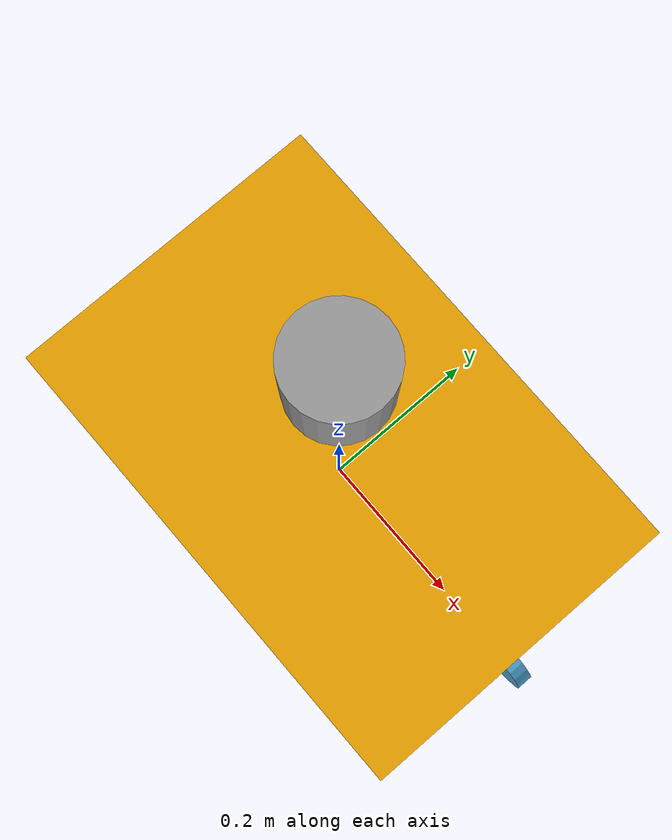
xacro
<?xml version="1.0"?>
<robot name="lidar_tank" xmlns:xacro="http://ros.org/wiki/xacro">

<transmission name="trans_joint_wheel_front">
  <type>transmission_interface/SimpleTransmission</type>
  <joint name="joint_wheel_front">
    <hardwareInterface>hardware_interface/velocity_joint_interface</hardwareInterface>
  </joint>
  <actuator name="motor_wheel_front">
    <hardwareInterface>hardware_interface/velocity_joint_interface</hardwareInterface>
    <mechanicalReduction>1</mechanicalReduction>
  </actuator>
</transmission>

<transmission name="trans_joint_wheel_rear">
  <type>transmission_interface/SimpleTransmission</type>
  <joint name="joint_wheel_rear">
    <hardwareInterface>hardware_interface/velocity_joint_interface</hardwareInterface>
  </joint>
  <actuator name="motor_wheel_rear">
    <hardwareInterface>hardware_interface/velocity_joint_interface</hardwareInterface>
    <mechanicalReduction>1</mechanicalReduction>
  </actuator>
</transmission>

  <!-- Base -->
  <link name="base_link">
    <visual>
      <geometry><box size="0.6 0.4 0.2"/></geometry>
      <origin xyz="0 0 0.1" rpy="0 0 0"/>
    </visual>
    <collision>
      <geometry><box size="0.6 0.4 0.2"/></geometry>
      <origin xyz="0 0 0.1" rpy="0 0 0"/>
    </collision>
    <inertial>
      <mass value="10.0"/>
      <inertia ixx="1" iyy="1" izz="1" ixy="0" ixz="0" iyz="0"/>
    </inertial>
  </link>

  <!-- Front Wheel -->
  <link name="wheel_front">
    <visual>
      <geometry><cylinder radius="0.05" length="0.02"/></geometry>
      <origin xyz="0 0 0" rpy="1.5708 0 0"/>
    </visual>
    <collision>
      <geometry><cylinder radius="0.05" length="0.02"/></geometry>
      <origin xyz="0 0 0" rpy="1.5708 0 0"/>
    </collision>
    <inertial>
      <mass value="0.5"/>
      <inertia ixx="0.001" iyy="0.001" izz="0.001" ixy="0" ixz="0" iyz="0"/>
    </inertial>
  </link>

  <joint name="joint_wheel_front" type="continuous">
    <parent link="base_link"/>
    <child link="wheel_front"/>
    <origin xyz="0.3 0 0" rpy="0 0 0"/>
    <axis xyz="0 1 0"/>
    <dynamics friction="0.0" damping="0.0"/>

    <ros2_control>
      <hardwareInterface>hardware_interface/VelocityJointInterface</hardwareInterface>
    </ros2_control>
  </joint>

  <!-- Rear Wheel -->
  <link name="wheel_rear">
    <visual>
      <geometry><cylinder radius="0.05" length="0.02"/></geometry>
      <origin xyz="0 0 0" rpy="1.5708 0 0"/>
    </visual>
    <collision>
      <geometry><cylinder radius="0.05" length="0.02"/></geometry>
      <origin xyz="0 0 0" rpy="1.5708 0 0"/>
    </collision>
    <inertial>
      <mass value="0.5"/>
      <inertia ixx="0.001" iyy="0.001" izz="0.001" ixy="0" ixz="0" iyz="0"/>
    </inertial>
  </link>

  <joint name="joint_wheel_rear" type="continuous">
    <parent link="base_link"/>
    <child link="wheel_rear"/>
    <origin xyz="-0.3 0 0" rpy="0 0 0"/>
    <axis xyz="0 1 0"/>

    <ros2_control>
    <hardwareInterface>hardware_interface/VelocityJointInterface</hardwareInterface>
  </ros2_control>
  </joint>

  <!-- Velodyne LiDAR -->
  <link name="velodyne_link">
    <visual>
      <geometry><cylinder radius="0.05" length="0.1"/></geometry>
      <origin xyz="0 0 0.3" rpy="0 0 0"/>
      <material name="gray"/>
    </visual>
  </link>

  <joint name="velodyne_joint" type="fixed">
    <parent link="base_link"/>
    <child link="velodyne_link"/>
    <origin xyz="0 0 0.25" rpy="0 0 0"/>
  </joint>

  <!-- Diff Drive Plugin -->
  <gazebo>
    <plugin name="diff_drive" filename="libgazebo_ros_diff_drive.so">
      <ros>
        <remapping>cmd_vel:=/cmd_vel</remapping>
      </ros>
      <left_joint>joint_wheel_front</left_joint>
      <right_joint>joint_wheel_rear</right_joint>
      <wheel_separation>0.6</wheel_separation>
      <wheel_diameter>0.10</wheel_diameter>
      <publish_odom>true</publish_odom>
      <odom_topic>odom</odom_topic>
      <odometry_frame>odom</odometry_frame>
      <robot_base_frame>base_link</robot_base_frame>
    </plugin>
  </gazebo>

  <!-- Velodyne LiDAR Sensor -->
  <gazebo reference="velodyne_link">
    <sensor type="ray" name="velodyne">
      <pose>0 0 0.1 0 0 0</pose>
      <update_rate>10</update_rate>
      <ray>
        <scan>
          <horizontal>
            <samples>360</samples>
            <min_angle>-3.14</min_angle>
            <max_angle>3.14</max_angle>
          </horizontal>
          <vertical>
            <samples>16</samples>
            <min_angle>-0.26</min_angle>
            <max_angle>0.26</max_angle>
          </vertical>
        </scan>
        <range>
          <min>0.1</min>
          <max>100.0</max>
        </range>
      </ray>
      <plugin name="velodyne_plugin" filename="libgazebo_ros_ray_sensor.so">
        <ros>
          <remapping>points:=/velodyne_points</remapping>
        </ros>
        <topicName>/velodyne_points</topicName>
        <frameName>velodyne_link</frameName>
        <output_type>sensor_msgs/PointCloud2</output_type>
      </plugin>
    </sensor>
  </gazebo>
  <!-- control plugin -->
  <gazebo>
    <plugin name="gazebo_ros2_control" filename="libgazebo_ros2_control.so"/>
  </gazebo>

</robot>
